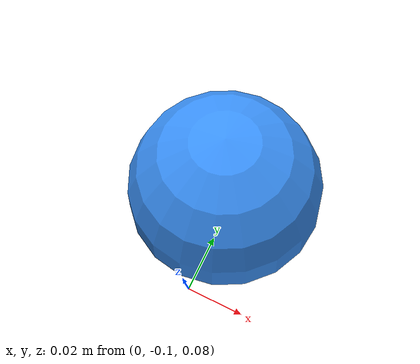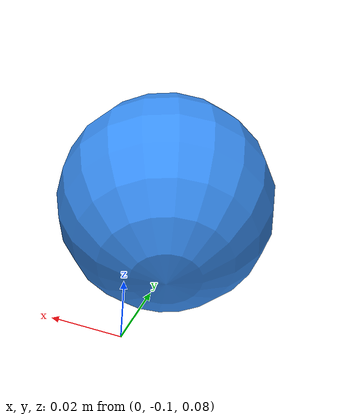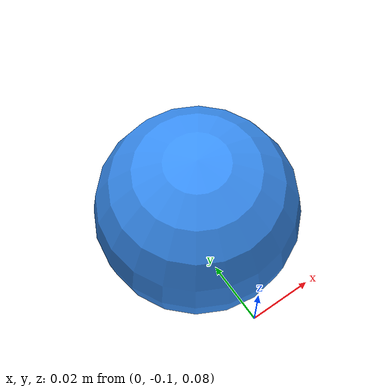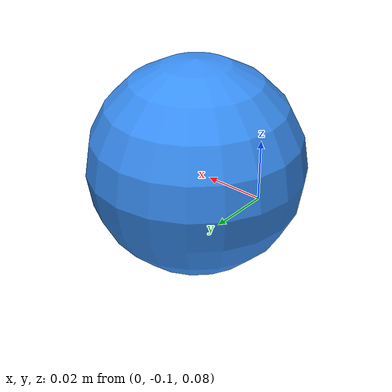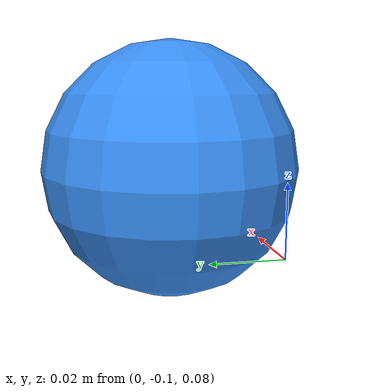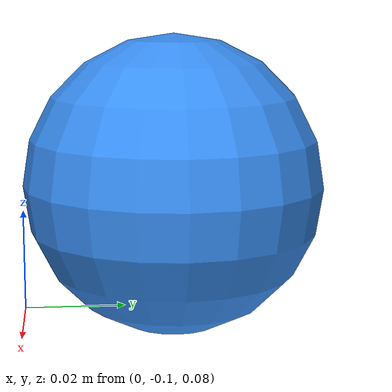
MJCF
<mujoco model="tactile_test_sphere">
  <compiler angle="radian"/>
  <asset>
    <material name="sphere_material" rgba="0.22 0.56 0.96 1" metallic="0.05" roughness="0.32"/>
  </asset>
  <worldbody>
    <body name="sphere_object" pos="0 -0.070 0.105" gravcomp="1">
      <freejoint name="sphere_object_free"/>
      <geom name="sphere_object_geom" type="sphere" size="0.030" mass="0.500"
            contype="1" conaffinity="1" material="sphere_material"/>
    </body>
  </worldbody>
</mujoco>
